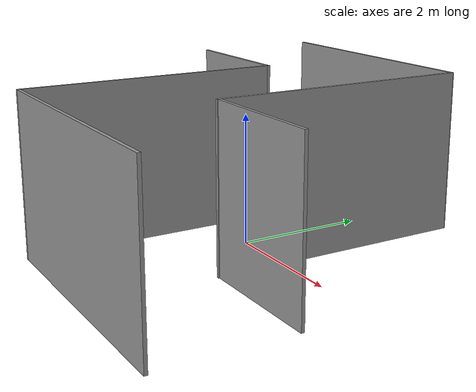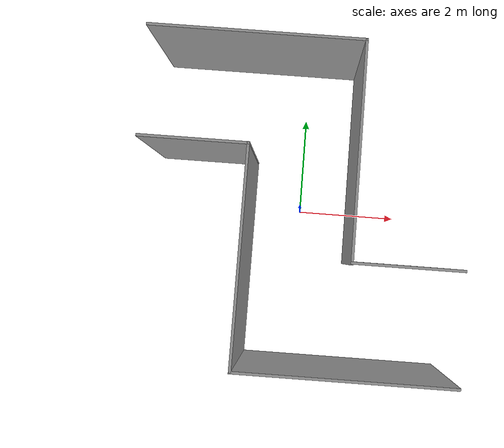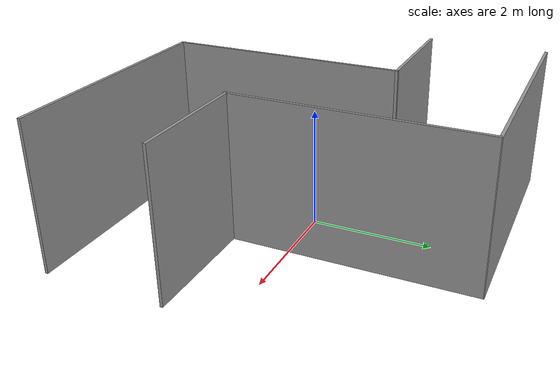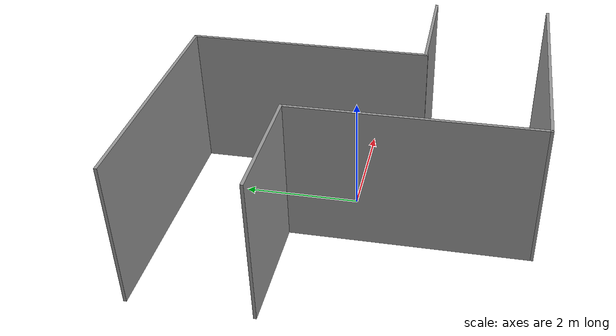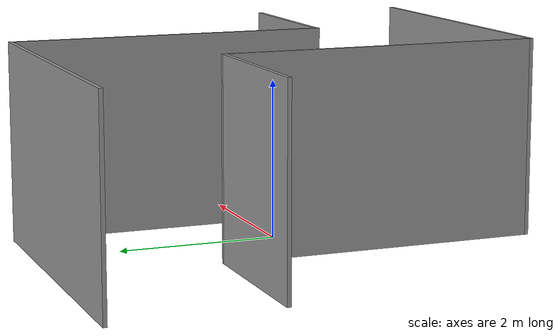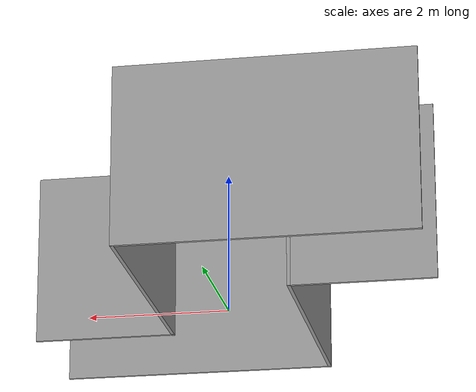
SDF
<?xml version='1.0'?>
<sdf version='1.6'>
  <model name='m2_1'>
    <pose frame=''>0 0 0 0 -0 0</pose>
    <link name='Wall_100'>
      <collision name='Wall_100_Collision'>
        <geometry>
          <box>
            <size>4.1 0.05 2.5</size>
          </box>
        </geometry>
        <pose frame=''>0 0 1.25 0 -0 0</pose>
      </collision>
      <visual name='Wall_100_Visual'>
        <pose frame=''>0 0 1.25 0 -0 0</pose>
        <geometry>
          <box>
            <size>4.1 0.05 2.5</size>
          </box>
        </geometry>
        <material>
          <script>
            <uri>file://media/materials/scripts/gazebo.material</uri>
            <name>Gazebo/Grey</name>
          </script>
          <ambient>1 1 1 1</ambient>
        </material>
        <meta>
          <layer>0</layer>
        </meta>
      </visual>
      <pose frame=''>-1 -1.025 0 0 -0 1.5708</pose>
    </link>
    <link name='Wall_102'>
      <collision name='Wall_102_Collision'>
        <geometry>
          <box>
            <size>2.05 0.05 2.5</size>
          </box>
        </geometry>
        <pose frame=''>0 0 1.25 0 -0 0</pose>
      </collision>
      <visual name='Wall_102_Visual'>
        <pose frame=''>0 0 1.25 0 -0 0</pose>
        <geometry>
          <box>
            <size>2.05 0.05 2.5</size>
          </box>
        </geometry>
        <material>
          <script>
            <uri>file://media/materials/scripts/gazebo.material</uri>
            <name>Gazebo/Grey</name>
          </script>
          <ambient>1 1 1 1</ambient>
        </material>
        <meta>
          <layer>0</layer>
        </meta>
      </visual>
      <pose frame=''>-2 1 0 0 -0 3.14159</pose>
    </link>
    <link name='Wall_81'>
      <collision name='Wall_81_Collision'>
        <geometry>
          <box>
            <size>4.05 0.05 2.5</size>
          </box>
        </geometry>
        <pose frame=''>0 0 1.25 0 -0 0</pose>
      </collision>
      <visual name='Wall_81_Visual'>
        <pose frame=''>0 0 1.25 0 -0 0</pose>
        <geometry>
          <box>
            <size>4.05 0.05 2.5</size>
          </box>
        </geometry>
        <material>
          <script>
            <uri>file://media/materials/scripts/gazebo.material</uri>
            <name>Gazebo/Grey</name>
          </script>
          <ambient>1 1 1 1</ambient>
        </material>
        <meta>
          <layer>0</layer>
        </meta>
      </visual>
      <pose frame=''>-1 3.05 0 0 -0 0</pose>
    </link>
    <link name='Wall_83'>
      <collision name='Wall_83_Collision'>
        <geometry>
          <box>
            <size>4.1 0.05 2.5</size>
          </box>
        </geometry>
        <pose frame=''>0 0 1.25 0 -0 0</pose>
      </collision>
      <visual name='Wall_83_Visual'>
        <pose frame=''>0 0 1.25 0 -0 0</pose>
        <geometry>
          <box>
            <size>4.1 0.05 2.5</size>
          </box>
        </geometry>
        <material>
          <script>
            <uri>file://media/materials/scripts/gazebo.material</uri>
            <name>Gazebo/Grey</name>
          </script>
          <ambient>1 1 1 1</ambient>
        </material>
        <meta>
          <layer>0</layer>
        </meta>
      </visual>
      <pose frame=''>1 1.01005 0 0 -0 -1.5708</pose>
    </link>
    <link name='Wall_94'>
      <collision name='Wall_94_Collision'>
        <geometry>
          <box>
            <size>2.05 0.05 2.5</size>
          </box>
        </geometry>
        <pose frame=''>0 0 1.25 0 -0 0</pose>
      </collision>
      <visual name='Wall_94_Visual'>
        <pose frame=''>0 0 1.25 0 -0 0</pose>
        <geometry>
          <box>
            <size>2.05 0.05 2.5</size>
          </box>
        </geometry>
        <material>
          <script>
            <uri>file://media/materials/scripts/gazebo.material</uri>
            <name>Gazebo/Grey</name>
          </script>
          <ambient>1 1 1 1</ambient>
        </material>
        <meta>
          <layer>0</layer>
        </meta>
      </visual>
      <pose frame=''>2 -1 0 0 -0 0</pose>
    </link>
    <link name='Wall_98'>
      <collision name='Wall_98_Collision'>
        <geometry>
          <box>
            <size>4.05 0.05 2.5</size>
          </box>
        </geometry>
        <pose frame=''>0 0 1.25 0 -0 0</pose>
      </collision>
      <visual name='Wall_98_Visual'>
        <pose frame=''>0 0 1.25 0 -0 0</pose>
        <geometry>
          <box>
            <size>4.05 0.05 2.5</size>
          </box>
        </geometry>
        <material>
          <script>
            <uri>file://media/materials/scripts/gazebo.material</uri>
            <name>Gazebo/Grey</name>
          </script>
          <ambient>1 1 1 1</ambient>
        </material>
        <meta>
          <layer>0</layer>
        </meta>
      </visual>
      <pose frame=''>1 -3.05 0 0 -0 3.14159</pose>
    </link>
    <static>1</static>
  </model>
</sdf>
